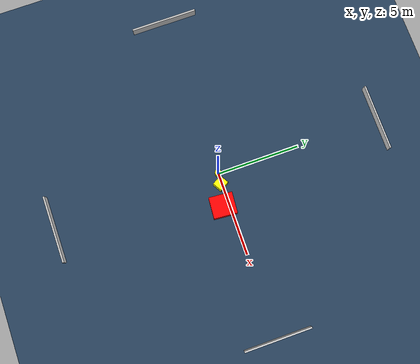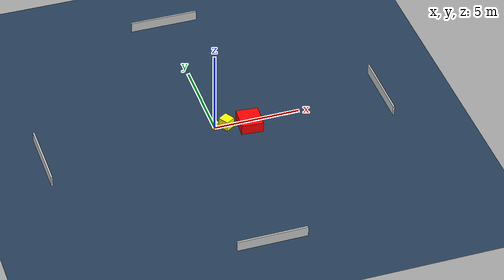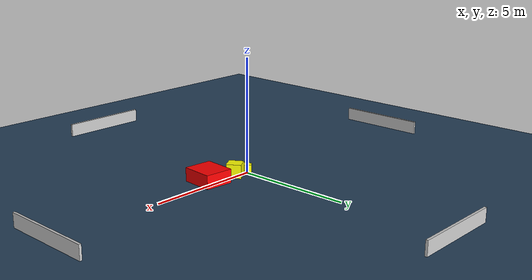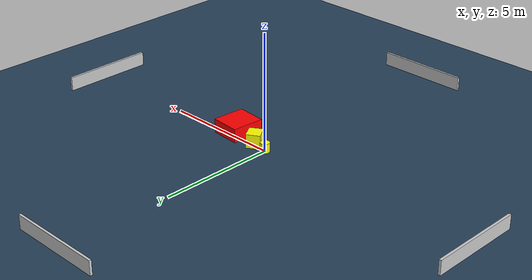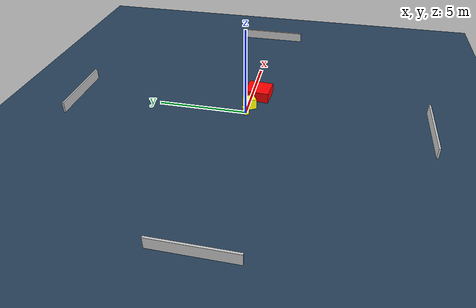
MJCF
<?xml version="1.0" ?>
<mujoco model="generated_environment">
  <option timestep="0.01" integrator="RK4" cone="elliptic"/>
  <default>
    <geom density="1"/>
  </default>
  <asset>
    <texture builtin="gradient" height="3072" name="skybox" rgb1="0.3 0.5 0.7" rgb2="0 0 0" type="skybox" width="512"/>
    <texture builtin="checker" height="300" name="groundplane" rgb1="0.2 0.3 0.4" rgb2="0.1 0.2 0.3" type="2d" width="300"/>
    <material name="groundplane" reflectance="0.2" texrepeat="5 5" texture="groundplane"/>
  </asset>
  <worldbody>
    <light dir="0 0 -1" directional="true" pos="0 0 1.5"/>
    <geom condim="3" friction="0.5 0.005 0.001" material="groundplane" name="floor" pos="0 0 0" size="0 0 0.05" type="plane"/>
    <body name="walls">
      <geom name="wall_1" condim="4" pos="-10.0 0.0 0.3" rgba="0.800000011920929 0.800000011920929 0.800000011920929 1.0" size="0.05 2.0 0.3" type="box"/>
      <geom name="wall_2" condim="4" pos="10.0 0.0 0.3" rgba="0.800000011920929 0.800000011920929 0.800000011920929 1.0" size="0.05 2.0 0.3" type="box"/>
      <geom name="wall_3" condim="4" pos="0.0 -10.0 0.3" rgba="0.800000011920929 0.800000011920929 0.800000011920929 1.0" size="2.0 0.05 0.3" type="box"/>
      <geom name="wall_4" condim="4" pos="0.0 10.0 0.3" rgba="0.800000011920929 0.800000011920929 0.800000011920929 1.0" size="2.0 0.05 0.3" type="box"/>
    </body>
    <body name="robot">
      <joint name="joint_x" type="slide" pos="0 0 0" axis="1 0 0"/>
      <joint name="joint_y" type="slide" pos="0 0 0" axis="0 1 0"/>
      <geom name="robot" type="cylinder" pos="0.0 0.0 0.2" size="0.2 0.2 0.0" mass="5.0" friction="1.0 0.005 0.0001" condim="4" rgba="1.0 1.0 0.0 1.0"/>
    </body>
    <body name="obstacle_1_movable">
      <geom name="obstacle_1_movable" condim="4" pos="0.6555508123775808 -0.08439624931793376 0.3" euler="0 0 300.8526847744894" friction="0.0 0.005 0.001" rgba="1.0 1.0 0.0 1.0" size="0.32063575596939775 0.2965284579135163 0.3" type="box" mass="0.1"/>
      <joint type="free"/>
    </body>
    <body name="obstacle_2_static">
      <geom name="obstacle_2_static" condim="4" pos="1.9252296592230274 -0.3888811980246486 0.3" euler="0 0 85.49246549691246" friction="0.0 0.005 0.001" rgba="1.0 0.0 0.0 1.0" size="0.7030601286253018 0.6352454517738461 0.3" type="box"/>
    </body>
  </worldbody>
  <actuator>
    <motor name="actuator_x" joint="joint_x" gear="1" ctrlrange="-1 1"/>
    <motor name="actuator_y" joint="joint_y" gear="1" ctrlrange="-1 1"/>
  </actuator>
</mujoco>
